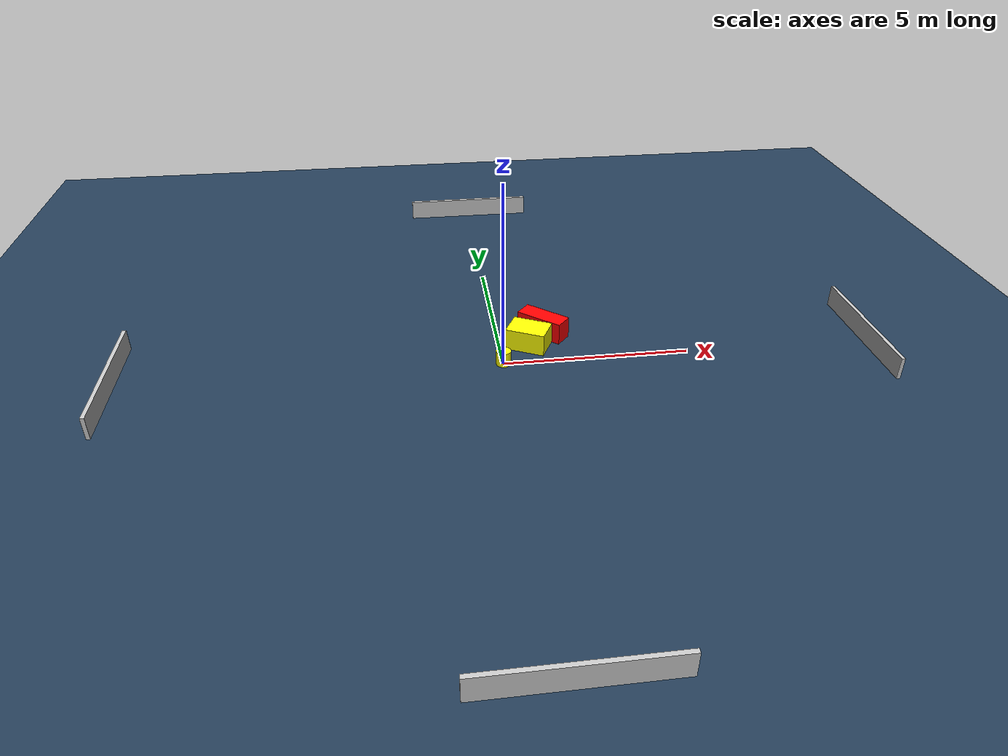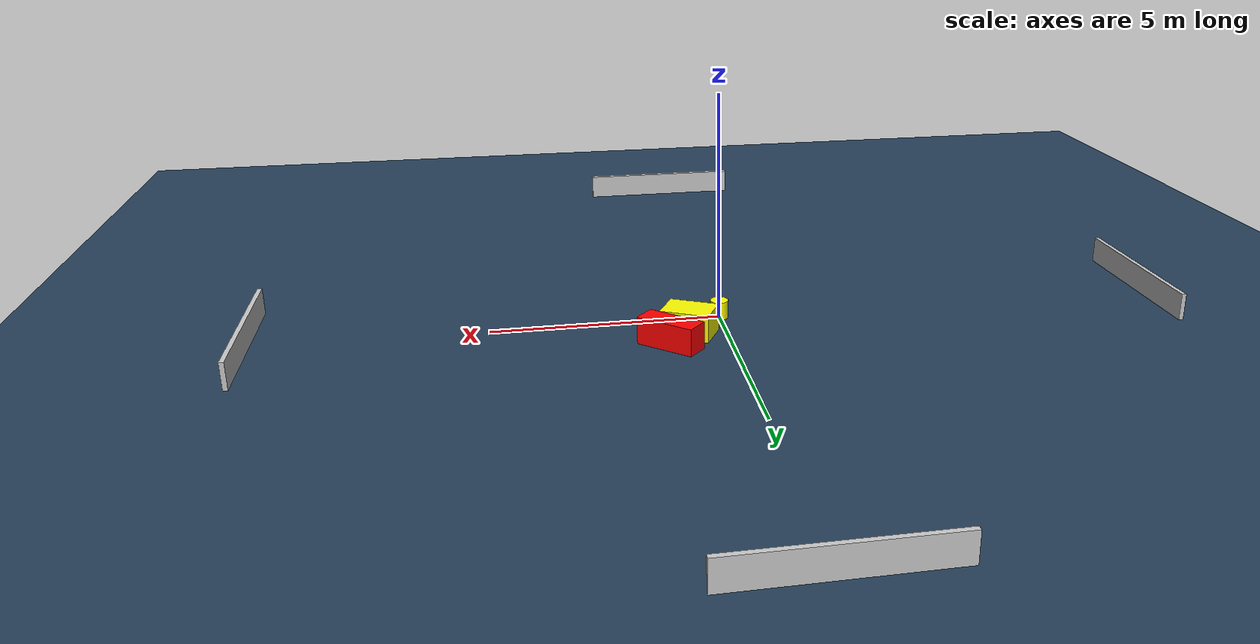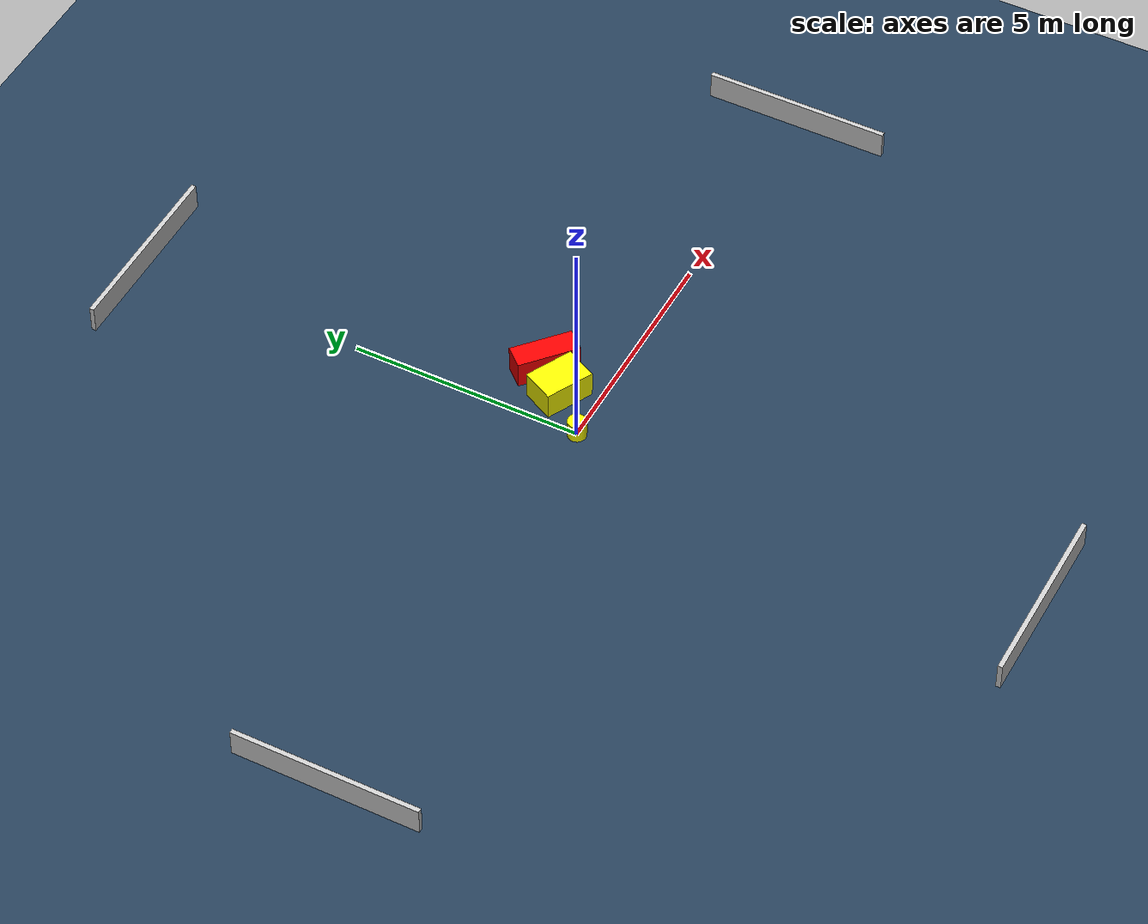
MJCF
<?xml version="1.0" ?>
<mujoco model="generated_environment">
  <option timestep="0.01" integrator="RK4" cone="elliptic"/>
  <default>
    <geom density="1"/>
  </default>
  <asset>
    <texture builtin="gradient" height="3072" name="skybox" rgb1="0.3 0.5 0.7" rgb2="0 0 0" type="skybox" width="512"/>
    <texture builtin="checker" height="300" name="groundplane" rgb1="0.2 0.3 0.4" rgb2="0.1 0.2 0.3" type="2d" width="300"/>
    <material name="groundplane" reflectance="0.2" texrepeat="5 5" texture="groundplane"/>
  </asset>
  <worldbody>
    <light dir="0 0 -1" directional="true" pos="0 0 1.5"/>
    <geom condim="3" friction="0.5 0.005 0.001" material="groundplane" name="floor" pos="0 0 0" size="0 0 0.05" type="plane"/>
    <body name="walls">
      <geom name="wall_1" condim="4" pos="-10.0 0.0 0.3" rgba="0.800000011920929 0.800000011920929 0.800000011920929 1.0" size="0.05 2.0 0.3" type="box"/>
      <geom name="wall_2" condim="4" pos="10.0 0.0 0.3" rgba="0.800000011920929 0.800000011920929 0.800000011920929 1.0" size="0.05 2.0 0.3" type="box"/>
      <geom name="wall_3" condim="4" pos="0.0 -10.0 0.3" rgba="0.800000011920929 0.800000011920929 0.800000011920929 1.0" size="2.0 0.05 0.3" type="box"/>
      <geom name="wall_4" condim="4" pos="0.0 10.0 0.3" rgba="0.800000011920929 0.800000011920929 0.800000011920929 1.0" size="2.0 0.05 0.3" type="box"/>
    </body>
    <body name="robot">
      <joint name="joint_x" type="slide" pos="0 0 0" axis="1 0 0"/>
      <joint name="joint_y" type="slide" pos="0 0 0" axis="0 1 0"/>
      <geom name="robot" type="cylinder" pos="0.0 0.0 0.2" size="0.2 0.2 0.0" mass="5.0" friction="1.0 0.005 0.0001" condim="4" rgba="1.0 1.0 0.0 1.0"/>
    </body>
    <body name="obstacle_1_movable">
      <geom name="obstacle_1_movable" condim="4" pos="0.7951693928021909 0.8151075198788785 0.3" euler="0 0 153.134342971872" friction="0.0 0.005 0.001" rgba="1.0 1.0 0.0 1.0" size="0.5399824817879516 0.3754229413941733 0.3" type="box" mass="0.1"/>
      <joint type="free"/>
    </body>
    <body name="obstacle_2_static">
      <geom name="obstacle_2_static" condim="4" pos="1.2857096612308334 1.400499815529779 0.3" euler="0 0 228.6360349322401" friction="0.0 0.005 0.001" rgba="1.0 0.0 0.0 1.0" size="0.2561059646279946 0.6706740574659922 0.3" type="box"/>
    </body>
  </worldbody>
  <actuator>
    <motor name="actuator_x" joint="joint_x" gear="1" ctrlrange="-1 1"/>
    <motor name="actuator_y" joint="joint_y" gear="1" ctrlrange="-1 1"/>
  </actuator>
</mujoco>
